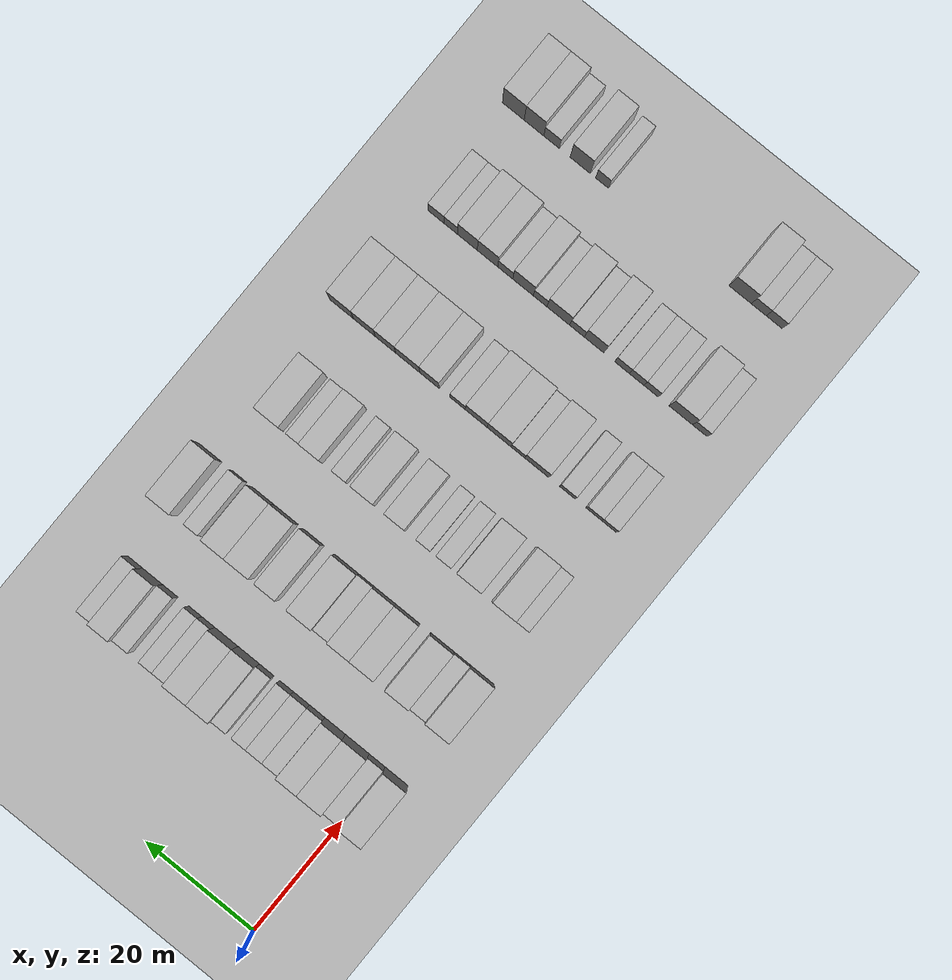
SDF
<sdf version="1.6">
 <world name="default">
  <include><name>ground_plane_1</name><uri>model://HANNAS_ground_plane</uri></include>
  <include>
   <name>ground_plane_2</name>
   <uri>model://HANNAS_ground_plane</uri>
   <pose>100 0 0  0 0 0</pose>
  </include>
  <model name="building_83">
   <static>1</static>
   <pose>25.0000 -1.8951 0 0.000000 0.000000 0.000000</pose>
   <link name="link">
    <pose>0 0 4.50 0 0 0</pose>
    <collision name="collision"><geometry><box><size>10.0000 4.2486 9.0000</size></box></geometry></collision>
    <visual name="visual">
     <cast_shadows>0</cast_shadows>
     <geometry><box><size>10.0000 4.2486 9.0000</size></box></geometry>
     <material>
      <script>
       <uri>model://HANNAS_wall/materials/scripts</uri>
       <uri>model://HANNAS_wall/materials/textures</uri>
       <name>vrc/HANNAS_wall</name>
      </script>
     </material>
    </visual>
   </link>
  </model>
  <model name="building_84">
   <static>1</static>
   <pose>25.0000 1.6938 0 0.000000 0.000000 0.000000</pose>
   <link name="link">
    <pose>0 0 3.00 0 0 0</pose>
    <collision name="collision"><geometry><box><size>10.0000 2.9292 6.0000</size></box></geometry></collision>
    <visual name="visual">
     <cast_shadows>0</cast_shadows>
     <geometry><box><size>10.0000 2.9292 6.0000</size></box></geometry>
     <material>
      <script>
       <uri>model://HANNAS_wall/materials/scripts</uri>
       <uri>model://HANNAS_wall/materials/textures</uri>
       <name>vrc/HANNAS_wall</name>
      </script>
     </material>
    </visual>
   </link>
  </model>
  <model name="building_85">
   <static>1</static>
   <pose>25.0000 5.3560 0 0.000000 0.000000 0.000000</pose>
   <link name="link">
    <pose>0 0 4.50 0 0 0</pose>
    <collision name="collision"><geometry><box><size>10.0000 4.3952 9.0000</size></box></geometry></collision>
    <visual name="visual">
     <cast_shadows>0</cast_shadows>
     <geometry><box><size>10.0000 4.3952 9.0000</size></box></geometry>
     <material>
      <script>
       <uri>model://HANNAS_wall/materials/scripts</uri>
       <uri>model://HANNAS_wall/materials/textures</uri>
       <name>vrc/HANNAS_wall</name>
      </script>
     </material>
    </visual>
   </link>
  </model>
  <model name="building_86">
   <static>1</static>
   <pose>25.0000 9.4479 0 0.000000 0.000000 0.000000</pose>
   <link name="link">
    <pose>0 0 4.50 0 0 0</pose>
    <collision name="collision"><geometry><box><size>10.0000 3.7886 9.0000</size></box></geometry></collision>
    <visual name="visual">
     <cast_shadows>0</cast_shadows>
     <geometry><box><size>10.0000 3.7886 9.0000</size></box></geometry>
     <material>
      <script>
       <uri>model://HANNAS_wall/materials/scripts</uri>
       <uri>model://HANNAS_wall/materials/textures</uri>
       <name>vrc/HANNAS_wall</name>
      </script>
     </material>
    </visual>
   </link>
  </model>
  <model name="building_87">
   <static>1</static>
   <pose>25.0000 12.7572 0 0.000000 0.000000 0.000000</pose>
   <link name="link">
    <pose>0 0 3.00 0 0 0</pose>
    <collision name="collision"><geometry><box><size>10.0000 2.8300 6.0000</size></box></geometry></collision>
    <visual name="visual">
     <cast_shadows>0</cast_shadows>
     <geometry><box><size>10.0000 2.8300 6.0000</size></box></geometry>
     <material>
      <script>
       <uri>model://HANNAS_wall/materials/scripts</uri>
       <uri>model://HANNAS_wall/materials/textures</uri>
       <name>vrc/HANNAS_wall</name>
      </script>
     </material>
    </visual>
   </link>
  </model>
  <model name="building_88">
   <static>1</static>
   <pose>25.0000 15.6550 0 0.000000 0.000000 0.000000</pose>
   <link name="link">
    <pose>0 0 3.00 0 0 0</pose>
    <collision name="collision"><geometry><box><size>10.0000 2.9655 6.0000</size></box></geometry></collision>
    <visual name="visual">
     <cast_shadows>0</cast_shadows>
     <geometry><box><size>10.0000 2.9655 6.0000</size></box></geometry>
     <material>
      <script>
       <uri>model://HANNAS_wall/materials/scripts</uri>
       <uri>model://HANNAS_wall/materials/textures</uri>
       <name>vrc/HANNAS_wall</name>
      </script>
     </material>
    </visual>
   </link>
  </model>
  <model name="building_89">
   <static>1</static>
   <pose>25.0000 18.4342 0 0.000000 0.000000 0.000000</pose>
   <link name="link">
    <pose>0 0 3.00 0 0 0</pose>
    <collision name="collision"><geometry><box><size>10.0000 2.5928 6.0000</size></box></geometry></collision>
    <visual name="visual">
     <cast_shadows>0</cast_shadows>
     <geometry><box><size>10.0000 2.5928 6.0000</size></box></geometry>
     <material>
      <script>
       <uri>model://HANNAS_wall/materials/scripts</uri>
       <uri>model://HANNAS_wall/materials/textures</uri>
       <name>vrc/HANNAS_wall</name>
      </script>
     </material>
    </visual>
   </link>
  </model>
  <model name="building_90">
   <static>1</static>
   <pose>25.0000 22.0776 0 0.000000 0.000000 0.000000</pose>
   <link name="link">
    <pose>0 0 3.00 0 0 0</pose>
    <collision name="collision"><geometry><box><size>10.0000 2.6940 6.0000</size></box></geometry></collision>
    <visual name="visual">
     <cast_shadows>0</cast_shadows>
     <geometry><box><size>10.0000 2.6940 6.0000</size></box></geometry>
     <material>
      <script>
       <uri>model://HANNAS_wall/materials/scripts</uri>
       <uri>model://HANNAS_wall/materials/textures</uri>
       <name>vrc/HANNAS_wall</name>
      </script>
     </material>
    </visual>
   </link>
  </model>
  <model name="building_91">
   <static>1</static>
   <pose>25.0000 25.4220 0 0.000000 0.000000 0.000000</pose>
   <link name="link">
    <pose>0 0 4.50 0 0 0</pose>
    <collision name="collision"><geometry><box><size>10.0000 3.9948 9.0000</size></box></geometry></collision>
    <visual name="visual">
     <cast_shadows>0</cast_shadows>
     <geometry><box><size>10.0000 3.9948 9.0000</size></box></geometry>
     <material>
      <script>
       <uri>model://HANNAS_wall/materials/scripts</uri>
       <uri>model://HANNAS_wall/materials/textures</uri>
       <name>vrc/HANNAS_wall</name>
      </script>
     </material>
    </visual>
   </link>
  </model>
  <model name="building_92">
   <static>1</static>
   <pose>25.0000 29.5695 0 0.000000 0.000000 0.000000</pose>
   <link name="link">
    <pose>0 0 4.50 0 0 0</pose>
    <collision name="collision"><geometry><box><size>10.0000 4.3004 9.0000</size></box></geometry></collision>
    <visual name="visual">
     <cast_shadows>0</cast_shadows>
     <geometry><box><size>10.0000 4.3004 9.0000</size></box></geometry>
     <material>
      <script>
       <uri>model://HANNAS_wall/materials/scripts</uri>
       <uri>model://HANNAS_wall/materials/textures</uri>
       <name>vrc/HANNAS_wall</name>
      </script>
     </material>
    </visual>
   </link>
  </model>
  <model name="building_93">
   <static>1</static>
   <pose>25.0000 32.9528 0 0.000000 0.000000 0.000000</pose>
   <link name="link">
    <pose>0 0 3.00 0 0 0</pose>
    <collision name="collision"><geometry><box><size>10.0000 2.4661 6.0000</size></box></geometry></collision>
    <visual name="visual">
     <cast_shadows>0</cast_shadows>
     <geometry><box><size>10.0000 2.4661 6.0000</size></box></geometry>
     <material>
      <script>
       <uri>model://HANNAS_wall/materials/scripts</uri>
       <uri>model://HANNAS_wall/materials/textures</uri>
       <name>vrc/HANNAS_wall</name>
      </script>
     </material>
    </visual>
   </link>
  </model>
  <model name="building_94">
   <static>1</static>
   <pose>25.0000 35.3946 0 0.000000 0.000000 0.000000</pose>
   <link name="link">
    <pose>0 0 3.00 0 0 0</pose>
    <collision name="collision"><geometry><box><size>10.0000 2.4176 6.0000</size></box></geometry></collision>
    <visual name="visual">
     <cast_shadows>0</cast_shadows>
     <geometry><box><size>10.0000 2.4176 6.0000</size></box></geometry>
     <material>
      <script>
       <uri>model://HANNAS_wall/materials/scripts</uri>
       <uri>model://HANNAS_wall/materials/textures</uri>
       <name>vrc/HANNAS_wall</name>
      </script>
     </material>
    </visual>
   </link>
  </model>
  <model name="building_95">
   <static>1</static>
   <pose>25.0000 40.0264 0 0.000000 0.000000 0.000000</pose>
   <link name="link">
    <pose>0 0 3.00 0 0 0</pose>
    <collision name="collision"><geometry><box><size>10.0000 2.8460 6.0000</size></box></geometry></collision>
    <visual name="visual">
     <cast_shadows>0</cast_shadows>
     <geometry><box><size>10.0000 2.8460 6.0000</size></box></geometry>
     <material>
      <script>
       <uri>model://HANNAS_wall/materials/scripts</uri>
       <uri>model://HANNAS_wall/materials/textures</uri>
       <name>vrc/HANNAS_wall</name>
      </script>
     </material>
    </visual>
   </link>
  </model>
  <model name="building_96">
   <static>1</static>
   <pose>25.0000 43.3256 0 0.000000 0.000000 0.000000</pose>
   <link name="link">
    <pose>0 0 4.50 0 0 0</pose>
    <collision name="collision"><geometry><box><size>10.0000 3.7524 9.0000</size></box></geometry></collision>
    <visual name="visual">
     <cast_shadows>0</cast_shadows>
     <geometry><box><size>10.0000 3.7524 9.0000</size></box></geometry>
     <material>
      <script>
       <uri>model://HANNAS_wall/materials/scripts</uri>
       <uri>model://HANNAS_wall/materials/textures</uri>
       <name>vrc/HANNAS_wall</name>
      </script>
     </material>
    </visual>
   </link>
  </model>
  <model name="building_97">
   <static>1</static>
   <pose>25.0000 46.5823 0 0.000000 0.000000 0.000000</pose>
   <link name="link">
    <pose>0 0 3.00 0 0 0</pose>
    <collision name="collision"><geometry><box><size>10.0000 2.7610 6.0000</size></box></geometry></collision>
    <visual name="visual">
     <cast_shadows>0</cast_shadows>
     <geometry><box><size>10.0000 2.7610 6.0000</size></box></geometry>
     <material>
      <script>
       <uri>model://HANNAS_wall/materials/scripts</uri>
       <uri>model://HANNAS_wall/materials/textures</uri>
       <name>vrc/HANNAS_wall</name>
      </script>
     </material>
    </visual>
   </link>
  </model>
  <model name="building_259">
   <static>1</static>
   <pose>44.0000 -2.1981 0 0.000000 0.000000 0.000000</pose>
   <link name="link">
    <pose>0 0 4.50 0 0 0</pose>
    <collision name="collision"><geometry><box><size>10.0000 4.3910 9.0000</size></box></geometry></collision>
    <visual name="visual">
     <cast_shadows>0</cast_shadows>
     <geometry><box><size>10.0000 4.3910 9.0000</size></box></geometry>
     <material>
      <script>
       <uri>model://HANNAS_wall/materials/scripts</uri>
       <uri>model://HANNAS_wall/materials/textures</uri>
       <name>vrc/HANNAS_wall</name>
      </script>
     </material>
    </visual>
   </link>
  </model>
  <model name="building_260">
   <static>1</static>
   <pose>44.0000 1.4712 0 0.000000 0.000000 0.000000</pose>
   <link name="link">
    <pose>0 0 3.00 0 0 0</pose>
    <collision name="collision"><geometry><box><size>10.0000 2.9476 6.0000</size></box></geometry></collision>
    <visual name="visual">
     <cast_shadows>0</cast_shadows>
     <geometry><box><size>10.0000 2.9476 6.0000</size></box></geometry>
     <material>
      <script>
       <uri>model://HANNAS_wall/materials/scripts</uri>
       <uri>model://HANNAS_wall/materials/textures</uri>
       <name>vrc/HANNAS_wall</name>
      </script>
     </material>
    </visual>
   </link>
  </model>
  <model name="building_261">
   <static>1</static>
   <pose>44.0000 5.1035 0 0.000000 0.000000 0.000000</pose>
   <link name="link">
    <pose>0 0 4.50 0 0 0</pose>
    <collision name="collision"><geometry><box><size>10.0000 4.3170 9.0000</size></box></geometry></collision>
    <visual name="visual">
     <cast_shadows>0</cast_shadows>
     <geometry><box><size>10.0000 4.3170 9.0000</size></box></geometry>
     <material>
      <script>
       <uri>model://HANNAS_wall/materials/scripts</uri>
       <uri>model://HANNAS_wall/materials/textures</uri>
       <name>vrc/HANNAS_wall</name>
      </script>
     </material>
    </visual>
   </link>
  </model>
  <model name="building_262">
   <static>1</static>
   <pose>44.0000 11.4702 0 0.000000 0.000000 0.000000</pose>
   <link name="link">
    <pose>0 0 4.50 0 0 0</pose>
    <collision name="collision"><geometry><box><size>10.0000 4.4163 9.0000</size></box></geometry></collision>
    <visual name="visual">
     <cast_shadows>0</cast_shadows>
     <geometry><box><size>10.0000 4.4163 9.0000</size></box></geometry>
     <material>
      <script>
       <uri>model://HANNAS_wall/materials/scripts</uri>
       <uri>model://HANNAS_wall/materials/textures</uri>
       <name>vrc/HANNAS_wall</name>
      </script>
     </material>
    </visual>
   </link>
  </model>
  <model name="building_263">
   <static>1</static>
   <pose>44.0000 15.6851 0 0.000000 0.000000 0.000000</pose>
   <link name="link">
    <pose>0 0 4.50 0 0 0</pose>
    <collision name="collision"><geometry><box><size>10.0000 4.0134 9.0000</size></box></geometry></collision>
    <visual name="visual">
     <cast_shadows>0</cast_shadows>
     <geometry><box><size>10.0000 4.0134 9.0000</size></box></geometry>
     <material>
      <script>
       <uri>model://HANNAS_wall/materials/scripts</uri>
       <uri>model://HANNAS_wall/materials/textures</uri>
       <name>vrc/HANNAS_wall</name>
      </script>
     </material>
    </visual>
   </link>
  </model>
  <model name="building_264">
   <static>1</static>
   <pose>44.0000 19.1108 0 0.000000 0.000000 0.000000</pose>
   <link name="link">
    <pose>0 0 3.00 0 0 0</pose>
    <collision name="collision"><geometry><box><size>10.0000 2.8380 6.0000</size></box></geometry></collision>
    <visual name="visual">
     <cast_shadows>0</cast_shadows>
     <geometry><box><size>10.0000 2.8380 6.0000</size></box></geometry>
     <material>
      <script>
       <uri>model://HANNAS_wall/materials/scripts</uri>
       <uri>model://HANNAS_wall/materials/textures</uri>
       <name>vrc/HANNAS_wall</name>
      </script>
     </material>
    </visual>
   </link>
  </model>
  <model name="building_265">
   <static>1</static>
   <pose>44.0000 22.7653 0 0.000000 0.000000 0.000000</pose>
   <link name="link">
    <pose>0 0 4.50 0 0 0</pose>
    <collision name="collision"><geometry><box><size>10.0000 4.4710 9.0000</size></box></geometry></collision>
    <visual name="visual">
     <cast_shadows>0</cast_shadows>
     <geometry><box><size>10.0000 4.4710 9.0000</size></box></geometry>
     <material>
      <script>
       <uri>model://HANNAS_wall/materials/scripts</uri>
       <uri>model://HANNAS_wall/materials/textures</uri>
       <name>vrc/HANNAS_wall</name>
      </script>
     </material>
    </visual>
   </link>
  </model>
  <model name="building_266">
   <static>1</static>
   <pose>44.0000 28.9028 0 0.000000 0.000000 0.000000</pose>
   <link name="link">
    <pose>0 0 4.50 0 0 0</pose>
    <collision name="collision"><geometry><box><size>10.0000 3.8039 9.0000</size></box></geometry></collision>
    <visual name="visual">
     <cast_shadows>0</cast_shadows>
     <geometry><box><size>10.0000 3.8039 9.0000</size></box></geometry>
     <material>
      <script>
       <uri>model://HANNAS_wall/materials/scripts</uri>
       <uri>model://HANNAS_wall/materials/textures</uri>
       <name>vrc/HANNAS_wall</name>
      </script>
     </material>
    </visual>
   </link>
  </model>
  <model name="building_267">
   <static>1</static>
   <pose>44.0000 34.0262 0 0.000000 0.000000 0.000000</pose>
   <link name="link">
    <pose>0 0 4.50 0 0 0</pose>
    <collision name="collision"><geometry><box><size>10.0000 4.4431 9.0000</size></box></geometry></collision>
    <visual name="visual">
     <cast_shadows>0</cast_shadows>
     <geometry><box><size>10.0000 4.4431 9.0000</size></box></geometry>
     <material>
      <script>
       <uri>model://HANNAS_wall/materials/scripts</uri>
       <uri>model://HANNAS_wall/materials/textures</uri>
       <name>vrc/HANNAS_wall</name>
      </script>
     </material>
    </visual>
   </link>
  </model>
  <model name="building_268">
   <static>1</static>
   <pose>44.0000 38.3360 0 0.000000 0.000000 0.000000</pose>
   <link name="link">
    <pose>0 0 4.50 0 0 0</pose>
    <collision name="collision"><geometry><box><size>10.0000 4.1764 9.0000</size></box></geometry></collision>
    <visual name="visual">
     <cast_shadows>0</cast_shadows>
     <geometry><box><size>10.0000 4.1764 9.0000</size></box></geometry>
     <material>
      <script>
       <uri>model://HANNAS_wall/materials/scripts</uri>
       <uri>model://HANNAS_wall/materials/textures</uri>
       <name>vrc/HANNAS_wall</name>
      </script>
     </material>
    </visual>
   </link>
  </model>
  <model name="building_269">
   <static>1</static>
   <pose>44.0000 42.7349 0 0.000000 0.000000 0.000000</pose>
   <link name="link">
    <pose>0 0 3.00 0 0 0</pose>
    <collision name="collision"><geometry><box><size>10.0000 2.6214 6.0000</size></box></geometry></collision>
    <visual name="visual">
     <cast_shadows>0</cast_shadows>
     <geometry><box><size>10.0000 2.6214 6.0000</size></box></geometry>
     <material>
      <script>
       <uri>model://HANNAS_wall/materials/scripts</uri>
       <uri>model://HANNAS_wall/materials/textures</uri>
       <name>vrc/HANNAS_wall</name>
      </script>
     </material>
    </visual>
   </link>
  </model>
  <model name="building_270">
   <static>1</static>
   <pose>44.0000 48.2014 0 0.000000 0.000000 0.000000</pose>
   <link name="link">
    <pose>0 0 4.50 0 0 0</pose>
    <collision name="collision"><geometry><box><size>10.0000 4.3117 9.0000</size></box></geometry></collision>
    <visual name="visual">
     <cast_shadows>0</cast_shadows>
     <geometry><box><size>10.0000 4.3117 9.0000</size></box></geometry>
     <material>
      <script>
       <uri>model://HANNAS_wall/materials/scripts</uri>
       <uri>model://HANNAS_wall/materials/textures</uri>
       <name>vrc/HANNAS_wall</name>
      </script>
     </material>
    </visual>
   </link>
  </model>
  <model name="building_431">
   <static>1</static>
   <pose>63.0000 -2.1532 0 0.000000 0.000000 0.000000</pose>
   <link name="link">
    <pose>0 0 3.00 0 0 0</pose>
    <collision name="collision"><geometry><box><size>10.0000 2.4751 6.0000</size></box></geometry></collision>
    <visual name="visual">
     <cast_shadows>0</cast_shadows>
     <geometry><box><size>10.0000 2.4751 6.0000</size></box></geometry>
     <material>
      <script>
       <uri>model://HANNAS_wall/materials/scripts</uri>
       <uri>model://HANNAS_wall/materials/textures</uri>
       <name>vrc/HANNAS_wall</name>
      </script>
     </material>
    </visual>
   </link>
  </model>
  <model name="building_432">
   <static>1</static>
   <pose>63.0000 1.2071 0 0.000000 0.000000 0.000000</pose>
   <link name="link">
    <pose>0 0 4.50 0 0 0</pose>
    <collision name="collision"><geometry><box><size>10.0000 4.2456 9.0000</size></box></geometry></collision>
    <visual name="visual">
     <cast_shadows>0</cast_shadows>
     <geometry><box><size>10.0000 4.2456 9.0000</size></box></geometry>
     <material>
      <script>
       <uri>model://HANNAS_wall/materials/scripts</uri>
       <uri>model://HANNAS_wall/materials/textures</uri>
       <name>vrc/HANNAS_wall</name>
      </script>
     </material>
    </visual>
   </link>
  </model>
  <model name="building_433">
   <static>1</static>
   <pose>63.0000 7.5621 0 0.000000 0.000000 0.000000</pose>
   <link name="link">
    <pose>0 0 4.50 0 0 0</pose>
    <collision name="collision"><geometry><box><size>10.0000 4.4643 9.0000</size></box></geometry></collision>
    <visual name="visual">
     <cast_shadows>0</cast_shadows>
     <geometry><box><size>10.0000 4.4643 9.0000</size></box></geometry>
     <material>
      <script>
       <uri>model://HANNAS_wall/materials/scripts</uri>
       <uri>model://HANNAS_wall/materials/textures</uri>
       <name>vrc/HANNAS_wall</name>
      </script>
     </material>
    </visual>
   </link>
  </model>
  <model name="building_434">
   <static>1</static>
   <pose>63.0000 12.2144 0 0.000000 0.000000 0.000000</pose>
   <link name="link">
    <pose>0 0 3.00 0 0 0</pose>
    <collision name="collision"><geometry><box><size>10.0000 2.8404 6.0000</size></box></geometry></collision>
    <visual name="visual">
     <cast_shadows>0</cast_shadows>
     <geometry><box><size>10.0000 2.8404 6.0000</size></box></geometry>
     <material>
      <script>
       <uri>model://HANNAS_wall/materials/scripts</uri>
       <uri>model://HANNAS_wall/materials/textures</uri>
       <name>vrc/HANNAS_wall</name>
      </script>
     </material>
    </visual>
   </link>
  </model>
  <model name="building_435">
   <static>1</static>
   <pose>63.0000 15.9543 0 0.000000 0.000000 0.000000</pose>
   <link name="link">
    <pose>0 0 3.00 0 0 0</pose>
    <collision name="collision"><geometry><box><size>10.0000 2.6394 6.0000</size></box></geometry></collision>
    <visual name="visual">
     <cast_shadows>0</cast_shadows>
     <geometry><box><size>10.0000 2.6394 6.0000</size></box></geometry>
     <material>
      <script>
       <uri>model://HANNAS_wall/materials/scripts</uri>
       <uri>model://HANNAS_wall/materials/textures</uri>
       <name>vrc/HANNAS_wall</name>
      </script>
     </material>
    </visual>
   </link>
  </model>
  <model name="building_436">
   <static>1</static>
   <pose>63.0000 21.1135 0 0.000000 0.000000 0.000000</pose>
   <link name="link">
    <pose>0 0 4.50 0 0 0</pose>
    <collision name="collision"><geometry><box><size>10.0000 3.6790 9.0000</size></box></geometry></collision>
    <visual name="visual">
     <cast_shadows>0</cast_shadows>
     <geometry><box><size>10.0000 3.6790 9.0000</size></box></geometry>
     <material>
      <script>
       <uri>model://HANNAS_wall/materials/scripts</uri>
       <uri>model://HANNAS_wall/materials/textures</uri>
       <name>vrc/HANNAS_wall</name>
      </script>
     </material>
    </visual>
   </link>
  </model>
  <model name="building_437">
   <static>1</static>
   <pose>63.0000 27.0038 0 0.000000 0.000000 0.000000</pose>
   <link name="link">
    <pose>0 0 4.50 0 0 0</pose>
    <collision name="collision"><geometry><box><size>10.0000 4.1015 9.0000</size></box></geometry></collision>
    <visual name="visual">
     <cast_shadows>0</cast_shadows>
     <geometry><box><size>10.0000 4.1015 9.0000</size></box></geometry>
     <material>
      <script>
       <uri>model://HANNAS_wall/materials/scripts</uri>
       <uri>model://HANNAS_wall/materials/textures</uri>
       <name>vrc/HANNAS_wall</name>
      </script>
     </material>
    </visual>
   </link>
  </model>
  <model name="building_438">
   <static>1</static>
   <pose>63.0000 31.3628 0 0.000000 0.000000 0.000000</pose>
   <link name="link">
    <pose>0 0 3.00 0 0 0</pose>
    <collision name="collision"><geometry><box><size>10.0000 2.6165 6.0000</size></box></geometry></collision>
    <visual name="visual">
     <cast_shadows>0</cast_shadows>
     <geometry><box><size>10.0000 2.6165 6.0000</size></box></geometry>
     <material>
      <script>
       <uri>model://HANNAS_wall/materials/scripts</uri>
       <uri>model://HANNAS_wall/materials/textures</uri>
       <name>vrc/HANNAS_wall</name>
      </script>
     </material>
    </visual>
   </link>
  </model>
  <model name="building_439">
   <static>1</static>
   <pose>63.0000 36.5295 0 0.000000 0.000000 0.000000</pose>
   <link name="link">
    <pose>0 0 4.50 0 0 0</pose>
    <collision name="collision"><geometry><box><size>10.0000 3.7169 9.0000</size></box></geometry></collision>
    <visual name="visual">
     <cast_shadows>0</cast_shadows>
     <geometry><box><size>10.0000 3.7169 9.0000</size></box></geometry>
     <material>
      <script>
       <uri>model://HANNAS_wall/materials/scripts</uri>
       <uri>model://HANNAS_wall/materials/textures</uri>
       <name>vrc/HANNAS_wall</name>
      </script>
     </material>
    </visual>
   </link>
  </model>
  <model name="building_440">
   <static>1</static>
   <pose>63.0000 39.6948 0 0.000000 0.000000 0.000000</pose>
   <link name="link">
    <pose>0 0 3.00 0 0 0</pose>
    <collision name="collision"><geometry><box><size>10.0000 2.6137 6.0000</size></box></geometry></collision>
    <visual name="visual">
     <cast_shadows>0</cast_shadows>
     <geometry><box><size>10.0000 2.6137 6.0000</size></box></geometry>
     <material>
      <script>
       <uri>model://HANNAS_wall/materials/scripts</uri>
       <uri>model://HANNAS_wall/materials/textures</uri>
       <name>vrc/HANNAS_wall</name>
      </script>
     </material>
    </visual>
   </link>
  </model>
  <model name="building_441">
   <static>1</static>
   <pose>63.0000 44.2328 0 0.000000 0.000000 0.000000</pose>
   <link name="link">
    <pose>0 0 4.50 0 0 0</pose>
    <collision name="collision"><geometry><box><size>10.0000 4.4624 9.0000</size></box></geometry></collision>
    <visual name="visual">
     <cast_shadows>0</cast_shadows>
     <geometry><box><size>10.0000 4.4624 9.0000</size></box></geometry>
     <material>
      <script>
       <uri>model://HANNAS_wall/materials/scripts</uri>
       <uri>model://HANNAS_wall/materials/textures</uri>
       <name>vrc/HANNAS_wall</name>
      </script>
     </material>
    </visual>
   </link>
  </model>
  <model name="building_599">
   <static>1</static>
   <pose>82.0000 -2.9298 0 0.000000 0.000000 0.000000</pose>
   <link name="link">
    <pose>0 0 3.00 0 0 0</pose>
    <collision name="collision"><geometry><box><size>10.0000 2.6991 6.0000</size></box></geometry></collision>
    <visual name="visual">
     <cast_shadows>0</cast_shadows>
     <geometry><box><size>10.0000 2.6991 6.0000</size></box></geometry>
     <material>
      <script>
       <uri>model://HANNAS_wall/materials/scripts</uri>
       <uri>model://HANNAS_wall/materials/textures</uri>
       <name>vrc/HANNAS_wall</name>
      </script>
     </material>
    </visual>
   </link>
  </model>
  <model name="building_600">
   <static>1</static>
   <pose>82.0000 -0.1213 0 0.000000 0.000000 0.000000</pose>
   <link name="link">
    <pose>0 0 3.00 0 0 0</pose>
    <collision name="collision"><geometry><box><size>10.0000 2.9180 6.0000</size></box></geometry></collision>
    <visual name="visual">
     <cast_shadows>0</cast_shadows>
     <geometry><box><size>10.0000 2.9180 6.0000</size></box></geometry>
     <material>
      <script>
       <uri>model://HANNAS_wall/materials/scripts</uri>
       <uri>model://HANNAS_wall/materials/textures</uri>
       <name>vrc/HANNAS_wall</name>
      </script>
     </material>
    </visual>
   </link>
  </model>
  <model name="building_601">
   <static>1</static>
   <pose>82.0000 4.7691 0 0.000000 0.000000 0.000000</pose>
   <link name="link">
    <pose>0 0 3.00 0 0 0</pose>
    <collision name="collision"><geometry><box><size>10.0000 2.8627 6.0000</size></box></geometry></collision>
    <visual name="visual">
     <cast_shadows>0</cast_shadows>
     <geometry><box><size>10.0000 2.8627 6.0000</size></box></geometry>
     <material>
      <script>
       <uri>model://HANNAS_wall/materials/scripts</uri>
       <uri>model://HANNAS_wall/materials/textures</uri>
       <name>vrc/HANNAS_wall</name>
      </script>
     </material>
    </visual>
   </link>
  </model>
  <model name="building_602">
   <static>1</static>
   <pose>82.0000 10.4224 0 0.000000 0.000000 0.000000</pose>
   <link name="link">
    <pose>0 0 4.50 0 0 0</pose>
    <collision name="collision"><geometry><box><size>10.0000 4.4439 9.0000</size></box></geometry></collision>
    <visual name="visual">
     <cast_shadows>0</cast_shadows>
     <geometry><box><size>10.0000 4.4439 9.0000</size></box></geometry>
     <material>
      <script>
       <uri>model://HANNAS_wall/materials/scripts</uri>
       <uri>model://HANNAS_wall/materials/textures</uri>
       <name>vrc/HANNAS_wall</name>
      </script>
     </material>
    </visual>
   </link>
  </model>
  <model name="building_603">
   <static>1</static>
   <pose>82.0000 13.9078 0 0.000000 0.000000 0.000000</pose>
   <link name="link">
    <pose>0 0 3.00 0 0 0</pose>
    <collision name="collision"><geometry><box><size>10.0000 2.5271 6.0000</size></box></geometry></collision>
    <visual name="visual">
     <cast_shadows>0</cast_shadows>
     <geometry><box><size>10.0000 2.5271 6.0000</size></box></geometry>
     <material>
      <script>
       <uri>model://HANNAS_wall/materials/scripts</uri>
       <uri>model://HANNAS_wall/materials/textures</uri>
       <name>vrc/HANNAS_wall</name>
      </script>
     </material>
    </visual>
   </link>
  </model>
  <model name="building_604">
   <static>1</static>
   <pose>82.0000 17.3835 0 0.000000 0.000000 0.000000</pose>
   <link name="link">
    <pose>0 0 4.50 0 0 0</pose>
    <collision name="collision"><geometry><box><size>10.0000 4.4242 9.0000</size></box></geometry></collision>
    <visual name="visual">
     <cast_shadows>0</cast_shadows>
     <geometry><box><size>10.0000 4.4242 9.0000</size></box></geometry>
     <material>
      <script>
       <uri>model://HANNAS_wall/materials/scripts</uri>
       <uri>model://HANNAS_wall/materials/textures</uri>
       <name>vrc/HANNAS_wall</name>
      </script>
     </material>
    </visual>
   </link>
  </model>
  <model name="building_605">
   <static>1</static>
   <pose>82.0000 21.6323 0 0.000000 0.000000 0.000000</pose>
   <link name="link">
    <pose>0 0 4.50 0 0 0</pose>
    <collision name="collision"><geometry><box><size>10.0000 4.0735 9.0000</size></box></geometry></collision>
    <visual name="visual">
     <cast_shadows>0</cast_shadows>
     <geometry><box><size>10.0000 4.0735 9.0000</size></box></geometry>
     <material>
      <script>
       <uri>model://HANNAS_wall/materials/scripts</uri>
       <uri>model://HANNAS_wall/materials/textures</uri>
       <name>vrc/HANNAS_wall</name>
      </script>
     </material>
    </visual>
   </link>
  </model>
  <model name="building_606">
   <static>1</static>
   <pose>82.0000 25.0973 0 0.000000 0.000000 0.000000</pose>
   <link name="link">
    <pose>0 0 3.00 0 0 0</pose>
    <collision name="collision"><geometry><box><size>10.0000 2.8564 6.0000</size></box></geometry></collision>
    <visual name="visual">
     <cast_shadows>0</cast_shadows>
     <geometry><box><size>10.0000 2.8564 6.0000</size></box></geometry>
     <material>
      <script>
       <uri>model://HANNAS_wall/materials/scripts</uri>
       <uri>model://HANNAS_wall/materials/textures</uri>
       <name>vrc/HANNAS_wall</name>
      </script>
     </material>
    </visual>
   </link>
  </model>
  <model name="building_607">
   <static>1</static>
   <pose>82.0000 30.3427 0 0.000000 0.000000 0.000000</pose>
   <link name="link">
    <pose>0 0 4.50 0 0 0</pose>
    <collision name="collision"><geometry><box><size>10.0000 3.6345 9.0000</size></box></geometry></collision>
    <visual name="visual">
     <cast_shadows>0</cast_shadows>
     <geometry><box><size>10.0000 3.6345 9.0000</size></box></geometry>
     <material>
      <script>
       <uri>model://HANNAS_wall/materials/scripts</uri>
       <uri>model://HANNAS_wall/materials/textures</uri>
       <name>vrc/HANNAS_wall</name>
      </script>
     </material>
    </visual>
   </link>
  </model>
  <model name="building_608">
   <static>1</static>
   <pose>82.0000 34.3666 0 0.000000 0.000000 0.000000</pose>
   <link name="link">
    <pose>0 0 4.50 0 0 0</pose>
    <collision name="collision"><geometry><box><size>10.0000 4.4133 9.0000</size></box></geometry></collision>
    <visual name="visual">
     <cast_shadows>0</cast_shadows>
     <geometry><box><size>10.0000 4.4133 9.0000</size></box></geometry>
     <material>
      <script>
       <uri>model://HANNAS_wall/materials/scripts</uri>
       <uri>model://HANNAS_wall/materials/textures</uri>
       <name>vrc/HANNAS_wall</name>
      </script>
     </material>
    </visual>
   </link>
  </model>
  <model name="building_609">
   <static>1</static>
   <pose>82.0000 38.4736 0 0.000000 0.000000 0.000000</pose>
   <link name="link">
    <pose>0 0 4.50 0 0 0</pose>
    <collision name="collision"><geometry><box><size>10.0000 3.8007 9.0000</size></box></geometry></collision>
    <visual name="visual">
     <cast_shadows>0</cast_shadows>
     <geometry><box><size>10.0000 3.8007 9.0000</size></box></geometry>
     <material>
      <script>
       <uri>model://HANNAS_wall/materials/scripts</uri>
       <uri>model://HANNAS_wall/materials/textures</uri>
       <name>vrc/HANNAS_wall</name>
      </script>
     </material>
    </visual>
   </link>
  </model>
  <model name="building_610">
   <static>1</static>
   <pose>82.0000 42.4188 0 0.000000 0.000000 0.000000</pose>
   <link name="link">
    <pose>0 0 4.50 0 0 0</pose>
    <collision name="collision"><geometry><box><size>10.0000 4.0896 9.0000</size></box></geometry></collision>
    <visual name="visual">
     <cast_shadows>0</cast_shadows>
     <geometry><box><size>10.0000 4.0896 9.0000</size></box></geometry>
     <material>
      <script>
       <uri>model://HANNAS_wall/materials/scripts</uri>
       <uri>model://HANNAS_wall/materials/textures</uri>
       <name>vrc/HANNAS_wall</name>
      </script>
     </material>
    </visual>
   </link>
  </model>
  <model name="building_611">
   <static>1</static>
   <pose>82.0000 46.6850 0 0.000000 0.000000 0.000000</pose>
   <link name="link">
    <pose>0 0 4.50 0 0 0</pose>
    <collision name="collision"><geometry><box><size>10.0000 4.4429 9.0000</size></box></geometry></collision>
    <visual name="visual">
     <cast_shadows>0</cast_shadows>
     <geometry><box><size>10.0000 4.4429 9.0000</size></box></geometry>
     <material>
      <script>
       <uri>model://HANNAS_wall/materials/scripts</uri>
       <uri>model://HANNAS_wall/materials/textures</uri>
       <name>vrc/HANNAS_wall</name>
      </script>
     </material>
    </visual>
   </link>
  </model>
  <model name="building_772">
   <static>1</static>
   <pose>101.0000 -4.3900 0 0.000000 0.000000 0.000000</pose>
   <link name="link">
    <pose>0 0 3.00 0 0 0</pose>
    <collision name="collision"><geometry><box><size>10.0000 2.6912 6.0000</size></box></geometry></collision>
    <visual name="visual">
     <cast_shadows>0</cast_shadows>
     <geometry><box><size>10.0000 2.6912 6.0000</size></box></geometry>
     <material>
      <script>
       <uri>model://HANNAS_wall/materials/scripts</uri>
       <uri>model://HANNAS_wall/materials/textures</uri>
       <name>vrc/HANNAS_wall</name>
      </script>
     </material>
    </visual>
   </link>
  </model>
  <model name="building_773">
   <static>1</static>
   <pose>101.0000 -0.8777 0 0.000000 0.000000 0.000000</pose>
   <link name="link">
    <pose>0 0 4.50 0 0 0</pose>
    <collision name="collision"><geometry><box><size>10.0000 4.3334 9.0000</size></box></geometry></collision>
    <visual name="visual">
     <cast_shadows>0</cast_shadows>
     <geometry><box><size>10.0000 4.3334 9.0000</size></box></geometry>
     <material>
      <script>
       <uri>model://HANNAS_wall/materials/scripts</uri>
       <uri>model://HANNAS_wall/materials/textures</uri>
       <name>vrc/HANNAS_wall</name>
      </script>
     </material>
    </visual>
   </link>
  </model>
  <model name="building_774">
   <static>1</static>
   <pose>101.0000 4.6043 0 0.000000 0.000000 0.000000</pose>
   <link name="link">
    <pose>0 0 3.00 0 0 0</pose>
    <collision name="collision"><geometry><box><size>10.0000 2.6306 6.0000</size></box></geometry></collision>
    <visual name="visual">
     <cast_shadows>0</cast_shadows>
     <geometry><box><size>10.0000 2.6306 6.0000</size></box></geometry>
     <material>
      <script>
       <uri>model://HANNAS_wall/materials/scripts</uri>
       <uri>model://HANNAS_wall/materials/textures</uri>
       <name>vrc/HANNAS_wall</name>
      </script>
     </material>
    </visual>
   </link>
  </model>
  <model name="building_775">
   <static>1</static>
   <pose>101.0000 7.2717 0 0.000000 0.000000 0.000000</pose>
   <link name="link">
    <pose>0 0 3.00 0 0 0</pose>
    <collision name="collision"><geometry><box><size>10.0000 2.7042 6.0000</size></box></geometry></collision>
    <visual name="visual">
     <cast_shadows>0</cast_shadows>
     <geometry><box><size>10.0000 2.7042 6.0000</size></box></geometry>
     <material>
      <script>
       <uri>model://HANNAS_wall/materials/scripts</uri>
       <uri>model://HANNAS_wall/materials/textures</uri>
       <name>vrc/HANNAS_wall</name>
      </script>
     </material>
    </visual>
   </link>
  </model>
  <model name="building_776">
   <static>1</static>
   <pose>101.0000 9.9993 0 0.000000 0.000000 0.000000</pose>
   <link name="link">
    <pose>0 0 3.00 0 0 0</pose>
    <collision name="collision"><geometry><box><size>10.0000 2.7509 6.0000</size></box></geometry></collision>
    <visual name="visual">
     <cast_shadows>0</cast_shadows>
     <geometry><box><size>10.0000 2.7509 6.0000</size></box></geometry>
     <material>
      <script>
       <uri>model://HANNAS_wall/materials/scripts</uri>
       <uri>model://HANNAS_wall/materials/textures</uri>
       <name>vrc/HANNAS_wall</name>
      </script>
     </material>
    </visual>
   </link>
  </model>
  <model name="building_777">
   <static>1</static>
   <pose>101.0000 15.1821 0 0.000000 0.000000 0.000000</pose>
   <link name="link">
    <pose>0 0 4.50 0 0 0</pose>
    <collision name="collision"><geometry><box><size>10.0000 3.6148 9.0000</size></box></geometry></collision>
    <visual name="visual">
     <cast_shadows>0</cast_shadows>
     <geometry><box><size>10.0000 3.6148 9.0000</size></box></geometry>
     <material>
      <script>
       <uri>model://HANNAS_wall/materials/scripts</uri>
       <uri>model://HANNAS_wall/materials/textures</uri>
       <name>vrc/HANNAS_wall</name>
      </script>
     </material>
    </visual>
   </link>
  </model>
  <model name="building_778">
   <static>1</static>
   <pose>101.0000 18.3619 0 0.000000 0.000000 0.000000</pose>
   <link name="link">
    <pose>0 0 3.00 0 0 0</pose>
    <collision name="collision"><geometry><box><size>10.0000 2.7447 6.0000</size></box></geometry></collision>
    <visual name="visual">
     <cast_shadows>0</cast_shadows>
     <geometry><box><size>10.0000 2.7447 6.0000</size></box></geometry>
     <material>
      <script>
       <uri>model://HANNAS_wall/materials/scripts</uri>
       <uri>model://HANNAS_wall/materials/textures</uri>
       <name>vrc/HANNAS_wall</name>
      </script>
     </material>
    </visual>
   </link>
  </model>
  <model name="building_779">
   <static>1</static>
   <pose>101.0000 21.8416 0 0.000000 0.000000 0.000000</pose>
   <link name="link">
    <pose>0 0 4.50 0 0 0</pose>
    <collision name="collision"><geometry><box><size>10.0000 4.2148 9.0000</size></box></geometry></collision>
    <visual name="visual">
     <cast_shadows>0</cast_shadows>
     <geometry><box><size>10.0000 4.2148 9.0000</size></box></geometry>
     <material>
      <script>
       <uri>model://HANNAS_wall/materials/scripts</uri>
       <uri>model://HANNAS_wall/materials/textures</uri>
       <name>vrc/HANNAS_wall</name>
      </script>
     </material>
    </visual>
   </link>
  </model>
  <model name="building_780">
   <static>1</static>
   <pose>101.0000 25.2203 0 0.000000 0.000000 0.000000</pose>
   <link name="link">
    <pose>0 0 3.00 0 0 0</pose>
    <collision name="collision"><geometry><box><size>10.0000 2.5426 6.0000</size></box></geometry></collision>
    <visual name="visual">
     <cast_shadows>0</cast_shadows>
     <geometry><box><size>10.0000 2.5426 6.0000</size></box></geometry>
     <material>
      <script>
       <uri>model://HANNAS_wall/materials/scripts</uri>
       <uri>model://HANNAS_wall/materials/textures</uri>
       <name>vrc/HANNAS_wall</name>
      </script>
     </material>
    </visual>
   </link>
  </model>
  <model name="building_781">
   <static>1</static>
   <pose>101.0000 28.4005 0 0.000000 0.000000 0.000000</pose>
   <link name="link">
    <pose>0 0 4.50 0 0 0</pose>
    <collision name="collision"><geometry><box><size>10.0000 3.8177 9.0000</size></box></geometry></collision>
    <visual name="visual">
     <cast_shadows>0</cast_shadows>
     <geometry><box><size>10.0000 3.8177 9.0000</size></box></geometry>
     <material>
      <script>
       <uri>model://HANNAS_wall/materials/scripts</uri>
       <uri>model://HANNAS_wall/materials/textures</uri>
       <name>vrc/HANNAS_wall</name>
      </script>
     </material>
    </visual>
   </link>
  </model>
  <model name="building_782">
   <static>1</static>
   <pose>101.0000 31.7156 0 0.000000 0.000000 0.000000</pose>
   <link name="link">
    <pose>0 0 3.00 0 0 0</pose>
    <collision name="collision"><geometry><box><size>10.0000 2.8126 6.0000</size></box></geometry></collision>
    <visual name="visual">
     <cast_shadows>0</cast_shadows>
     <geometry><box><size>10.0000 2.8126 6.0000</size></box></geometry>
     <material>
      <script>
       <uri>model://HANNAS_wall/materials/scripts</uri>
       <uri>model://HANNAS_wall/materials/textures</uri>
       <name>vrc/HANNAS_wall</name>
      </script>
     </material>
    </visual>
   </link>
  </model>
  <model name="building_783">
   <static>1</static>
   <pose>101.0000 35.0232 0 0.000000 0.000000 0.000000</pose>
   <link name="link">
    <pose>0 0 4.50 0 0 0</pose>
    <collision name="collision"><geometry><box><size>10.0000 3.8026 9.0000</size></box></geometry></collision>
    <visual name="visual">
     <cast_shadows>0</cast_shadows>
     <geometry><box><size>10.0000 3.8026 9.0000</size></box></geometry>
     <material>
      <script>
       <uri>model://HANNAS_wall/materials/scripts</uri>
       <uri>model://HANNAS_wall/materials/textures</uri>
       <name>vrc/HANNAS_wall</name>
      </script>
     </material>
    </visual>
   </link>
  </model>
  <model name="building_784">
   <static>1</static>
   <pose>101.0000 38.7720 0 0.000000 0.000000 0.000000</pose>
   <link name="link">
    <pose>0 0 4.50 0 0 0</pose>
    <collision name="collision"><geometry><box><size>10.0000 3.6950 9.0000</size></box></geometry></collision>
    <visual name="visual">
     <cast_shadows>0</cast_shadows>
     <geometry><box><size>10.0000 3.6950 9.0000</size></box></geometry>
     <material>
      <script>
       <uri>model://HANNAS_wall/materials/scripts</uri>
       <uri>model://HANNAS_wall/materials/textures</uri>
       <name>vrc/HANNAS_wall</name>
      </script>
     </material>
    </visual>
   </link>
  </model>
  <model name="building_785">
   <static>1</static>
   <pose>101.0000 41.8789 0 0.000000 0.000000 0.000000</pose>
   <link name="link">
    <pose>0 0 3.00 0 0 0</pose>
    <collision name="collision"><geometry><box><size>10.0000 2.5187 6.0000</size></box></geometry></collision>
    <visual name="visual">
     <cast_shadows>0</cast_shadows>
     <geometry><box><size>10.0000 2.5187 6.0000</size></box></geometry>
     <material>
      <script>
       <uri>model://HANNAS_wall/materials/scripts</uri>
       <uri>model://HANNAS_wall/materials/textures</uri>
       <name>vrc/HANNAS_wall</name>
      </script>
     </material>
    </visual>
   </link>
  </model>
  <model name="building_786">
   <static>1</static>
   <pose>101.0000 44.6063 0 0.000000 0.000000 0.000000</pose>
   <link name="link">
    <pose>0 0 3.00 0 0 0</pose>
    <collision name="collision"><geometry><box><size>10.0000 2.9361 6.0000</size></box></geometry></collision>
    <visual name="visual">
     <cast_shadows>0</cast_shadows>
     <geometry><box><size>10.0000 2.9361 6.0000</size></box></geometry>
     <material>
      <script>
       <uri>model://HANNAS_wall/materials/scripts</uri>
       <uri>model://HANNAS_wall/materials/textures</uri>
       <name>vrc/HANNAS_wall</name>
      </script>
     </material>
    </visual>
   </link>
  </model>
  <model name="building_948">
   <static>1</static>
   <pose>120.0000 -2.8941 0 0.000000 0.000000 0.000000</pose>
   <link name="link">
    <pose>0 0 3.00 0 0 0</pose>
    <collision name="collision"><geometry><box><size>10.0000 2.9271 6.0000</size></box></geometry></collision>
    <visual name="visual">
     <cast_shadows>0</cast_shadows>
     <geometry><box><size>10.0000 2.9271 6.0000</size></box></geometry>
     <material>
      <script>
       <uri>model://HANNAS_wall/materials/scripts</uri>
       <uri>model://HANNAS_wall/materials/textures</uri>
       <name>vrc/HANNAS_wall</name>
      </script>
     </material>
    </visual>
   </link>
  </model>
  <model name="building_949">
   <static>1</static>
   <pose>120.0000 -0.0421 0 0.000000 0.000000 0.000000</pose>
   <link name="link">
    <pose>0 0 3.00 0 0 0</pose>
    <collision name="collision"><geometry><box><size>10.0000 2.7769 6.0000</size></box></geometry></collision>
    <visual name="visual">
     <cast_shadows>0</cast_shadows>
     <geometry><box><size>10.0000 2.7769 6.0000</size></box></geometry>
     <material>
      <script>
       <uri>model://HANNAS_wall/materials/scripts</uri>
       <uri>model://HANNAS_wall/materials/textures</uri>
       <name>vrc/HANNAS_wall</name>
      </script>
     </material>
    </visual>
   </link>
  </model>
  <model name="building_950">
   <static>1</static>
   <pose>120.0000 3.4249 0 0.000000 0.000000 0.000000</pose>
   <link name="link">
    <pose>0 0 4.50 0 0 0</pose>
    <collision name="collision"><geometry><box><size>10.0000 4.1572 9.0000</size></box></geometry></collision>
    <visual name="visual">
     <cast_shadows>0</cast_shadows>
     <geometry><box><size>10.0000 4.1572 9.0000</size></box></geometry>
     <material>
      <script>
       <uri>model://HANNAS_wall/materials/scripts</uri>
       <uri>model://HANNAS_wall/materials/textures</uri>
       <name>vrc/HANNAS_wall</name>
      </script>
     </material>
    </visual>
   </link>
  </model>
  <model name="building_951">
   <static>1</static>
   <pose>120.0000 29.1072 0 0.000000 0.000000 0.000000</pose>
   <link name="link">
    <pose>0 0 3.00 0 0 0</pose>
    <collision name="collision"><geometry><box><size>10.0000 2.4025 6.0000</size></box></geometry></collision>
    <visual name="visual">
     <cast_shadows>0</cast_shadows>
     <geometry><box><size>10.0000 2.4025 6.0000</size></box></geometry>
     <material>
      <script>
       <uri>model://HANNAS_wall/materials/scripts</uri>
       <uri>model://HANNAS_wall/materials/textures</uri>
       <name>vrc/HANNAS_wall</name>
      </script>
     </material>
    </visual>
   </link>
  </model>
  <model name="building_952">
   <static>1</static>
   <pose>120.0000 33.1892 0 0.000000 0.000000 0.000000</pose>
   <link name="link">
    <pose>0 0 4.50 0 0 0</pose>
    <collision name="collision"><geometry><box><size>10.0000 3.7616 9.0000</size></box></geometry></collision>
    <visual name="visual">
     <cast_shadows>0</cast_shadows>
     <geometry><box><size>10.0000 3.7616 9.0000</size></box></geometry>
     <material>
      <script>
       <uri>model://HANNAS_wall/materials/scripts</uri>
       <uri>model://HANNAS_wall/materials/textures</uri>
       <name>vrc/HANNAS_wall</name>
      </script>
     </material>
    </visual>
   </link>
  </model>
  <model name="building_953">
   <static>1</static>
   <pose>120.0000 38.5268 0 0.000000 0.000000 0.000000</pose>
   <link name="link">
    <pose>0 0 3.00 0 0 0</pose>
    <collision name="collision"><geometry><box><size>10.0000 2.9136 6.0000</size></box></geometry></collision>
    <visual name="visual">
     <cast_shadows>0</cast_shadows>
     <geometry><box><size>10.0000 2.9136 6.0000</size></box></geometry>
     <material>
      <script>
       <uri>model://HANNAS_wall/materials/scripts</uri>
       <uri>model://HANNAS_wall/materials/textures</uri>
       <name>vrc/HANNAS_wall</name>
      </script>
     </material>
    </visual>
   </link>
  </model>
  <model name="building_954">
   <static>1</static>
   <pose>120.0000 41.8090 0 0.000000 0.000000 0.000000</pose>
   <link name="link">
    <pose>0 0 4.50 0 0 0</pose>
    <collision name="collision"><geometry><box><size>10.0000 3.6508 9.0000</size></box></geometry></collision>
    <visual name="visual">
     <cast_shadows>0</cast_shadows>
     <geometry><box><size>10.0000 3.6508 9.0000</size></box></geometry>
     <material>
      <script>
       <uri>model://HANNAS_wall/materials/scripts</uri>
       <uri>model://HANNAS_wall/materials/textures</uri>
       <name>vrc/HANNAS_wall</name>
      </script>
     </material>
    </visual>
   </link>
  </model>
  <model name="building_955">
   <static>1</static>
   <pose>120.0000 45.6669 0 0.000000 0.000000 0.000000</pose>
   <link name="link">
    <pose>0 0 4.50 0 0 0</pose>
    <collision name="collision"><geometry><box><size>10.0000 4.0650 9.0000</size></box></geometry></collision>
    <visual name="visual">
     <cast_shadows>0</cast_shadows>
     <geometry><box><size>10.0000 4.0650 9.0000</size></box></geometry>
     <material>
      <script>
       <uri>model://HANNAS_wall/materials/scripts</uri>
       <uri>model://HANNAS_wall/materials/textures</uri>
       <name>vrc/HANNAS_wall</name>
      </script>
     </material>
    </visual>
   </link>
  </model>
 </world>
</sdf>
